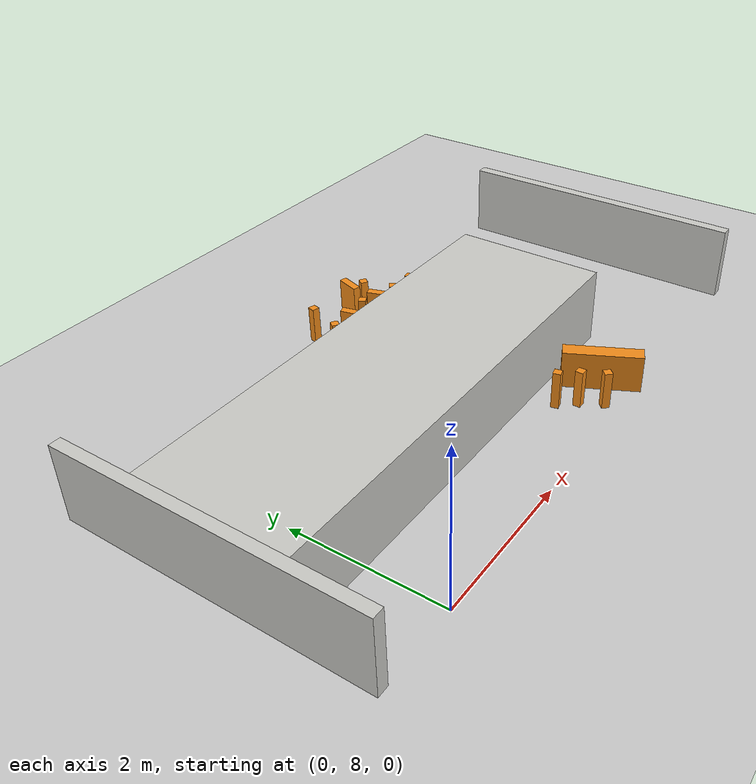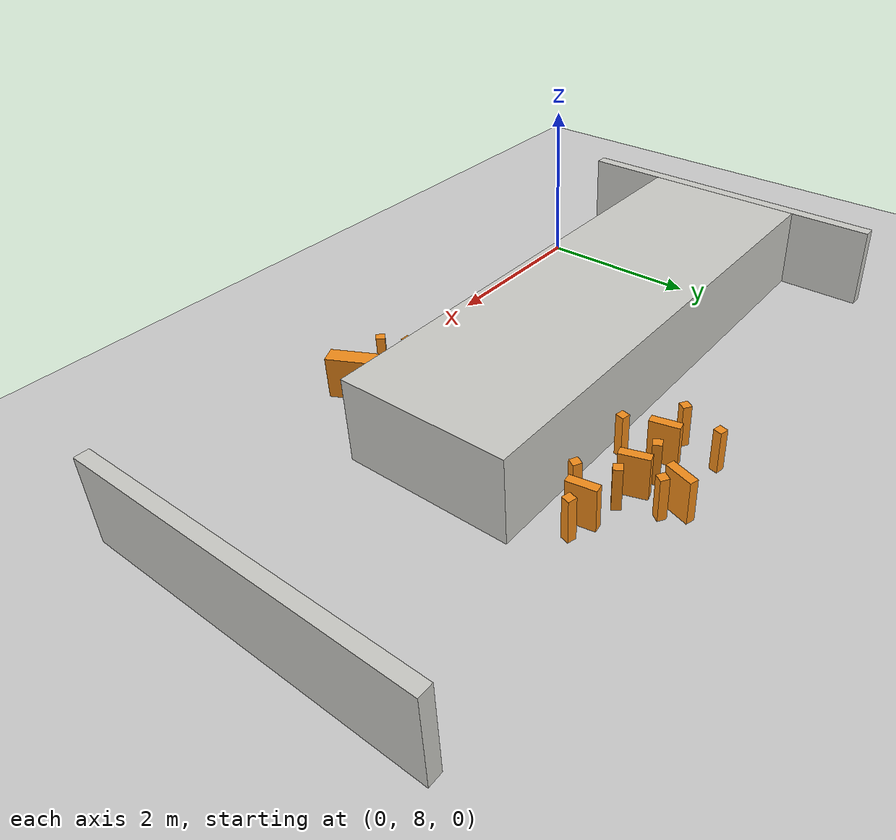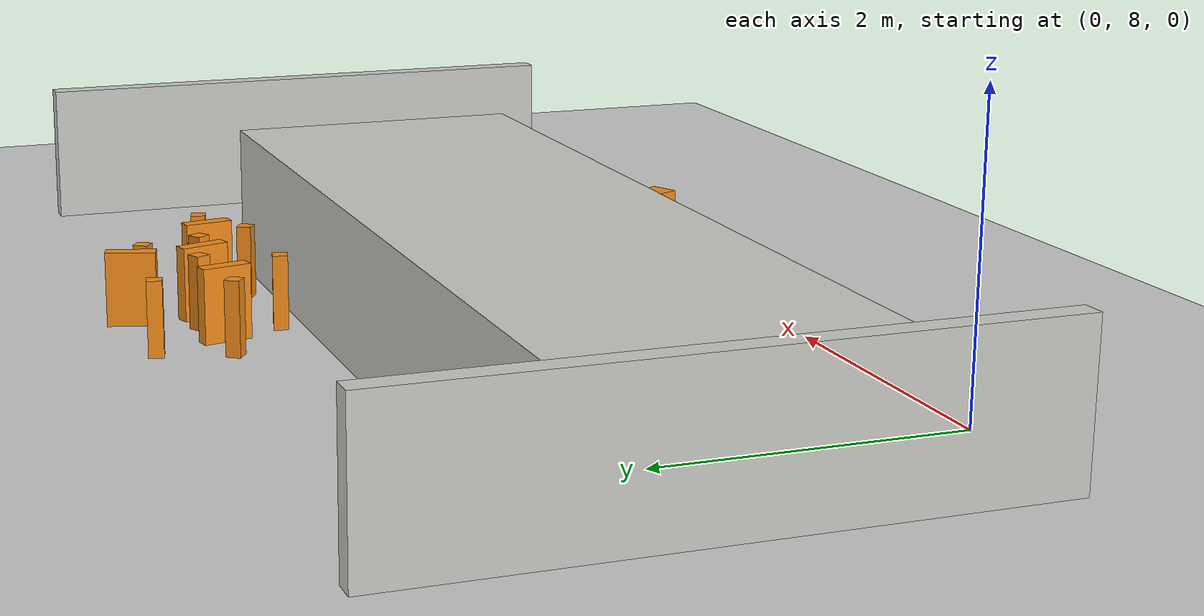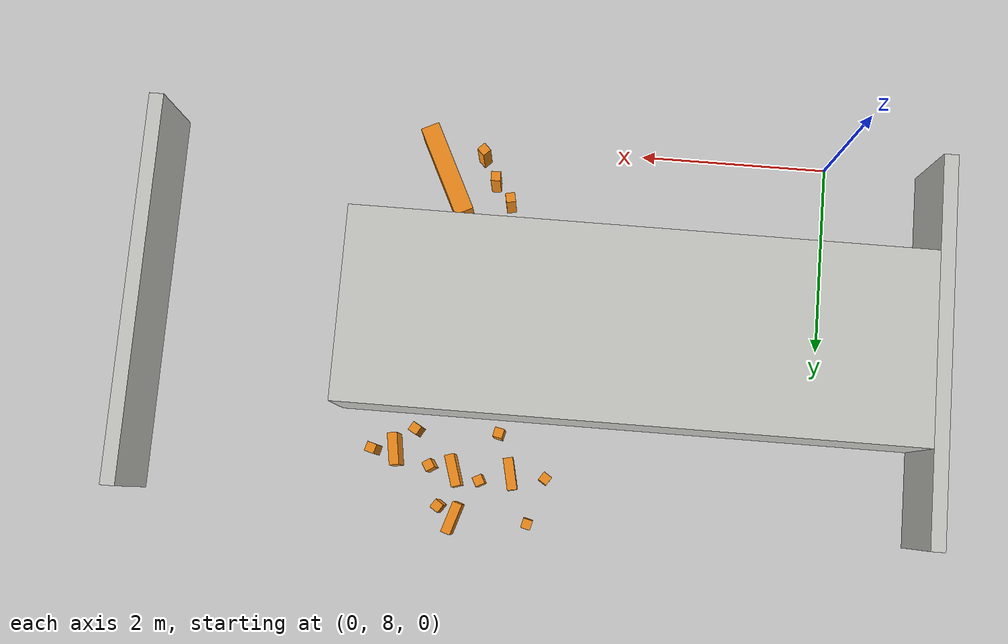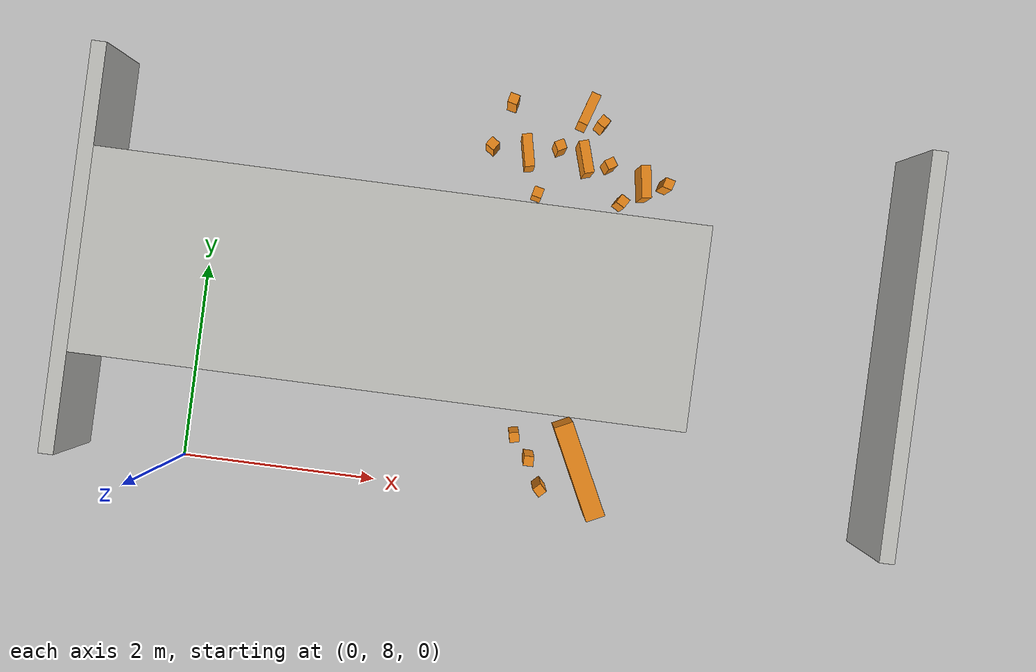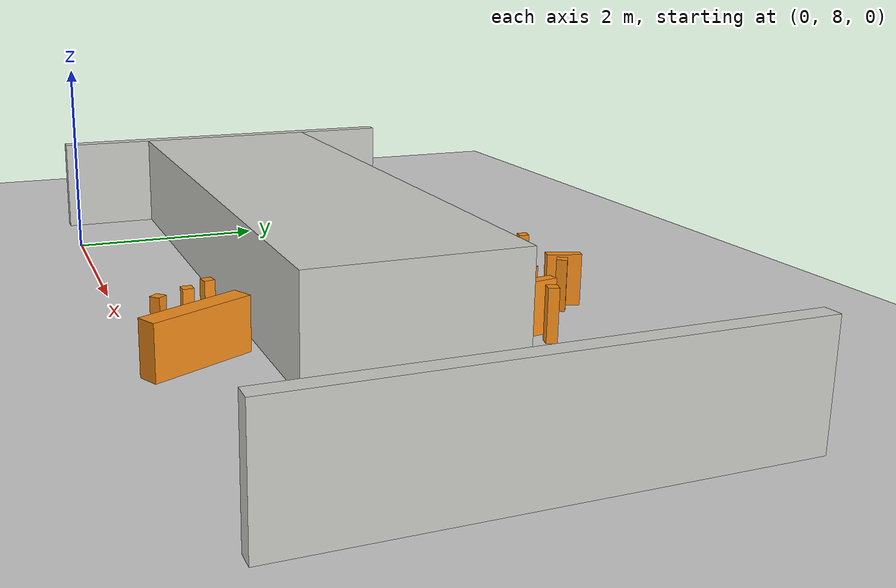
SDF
<sdf version="1.6">
 <world name="default">
  <model name="ground_plane">
   <static>1</static>
   <link name="link">
    <collision name="collision">
     <geometry><plane><normal>0 0 1</normal><size>100 100</size></plane></geometry>
     <surface><friction><ode><mu>100</mu><mu2>50</mu2></ode></friction></surface>
    </collision>
    <visual name="visual">
     <cast_shadows>0</cast_shadows>
     <geometry><plane><normal>0 0 1</normal><size>100 100</size></plane></geometry>
     <material>
      <script><uri>file://media/materials/scripts/concrete.material</uri><name>Concrete/1</name></script>
     </material>
    </visual>
   </link>
  </model>
  <model name="block_2x6m_0">
   <pose>2 10 0 0 0 -1.5708</pose>
   <link name="Block">
    <collision name="Block_Collision">
     <geometry><box><size>2 6 1</size></box></geometry>
     <pose>0 0 0.5 0 -0 0</pose>
    </collision>
    <visual name="Block_Visual">
     <pose>0 0 0.5 0 -0 0</pose>
     <geometry><box><size>2 6 1</size></box></geometry>
     <material>
      <script><uri>file://media/materials/scripts/gazebo.material</uri><name>Gazebo/CeilingTiled</name></script>
      <ambient>1 0.764706 0.305882 1</ambient>
     </material>
    </visual>
   </link>
   <static>1</static>
  </model>
  <model name="wall_4meter_clone_clone">
   <static>1</static>
   <pose>7.075 10 0 0 0 -1.5708</pose>
   <link name="Wall">
    <collision name="Wall_Collision">
     <geometry><box><size>4 0.15 1</size></box></geometry>
     <pose>0 0 0.5 0 -0 0</pose>
    </collision>
    <visual name="Wall_Visual">
     <pose>0 0 0.5 0 -0 0</pose>
     <geometry><box><size>4 0.15 1</size></box></geometry>
     <material>
      <script><uri>file://media/materials/scripts/gazebo.material</uri><name>Gazebo/CeilingTiled</name></script>
      <ambient>1 0.764706 0.305882 1</ambient>
     </material>
    </visual>
   </link>
  </model>
  <model name="wall_4meter_clone_0_clone_2">
   <static>1</static>
   <pose>-1.075 10 0 0 0 -1.5708</pose>
   <link name="Wall">
    <collision name="Wall_Collision">
     <geometry><box><size>4 0.15 1</size></box></geometry>
     <pose>0 0 0.5 0 -0 0</pose>
    </collision>
    <visual name="Wall_Visual">
     <pose>0 0 0.5 0 -0 0</pose>
     <geometry><box><size>4 0.15 1</size></box></geometry>
     <material>
      <script><uri>file://media/materials/scripts/gazebo.material</uri><name>Gazebo/CeilingTiled</name></script>
      <ambient>1 0.764706 0.305882 1</ambient>
     </material>
    </visual>
   </link>
  </model>
  <model name="caution_100cm_wall_0">
   <static>1</static>
   <pose>4.08257 8.42121 0 0 0 -1.11242</pose>
   <static>1</static>
   <link name="Wall">
    <collision name="Wall_Collision">
     <geometry><box><size>1 0.2 0.5</size></box></geometry>
     <pose>0 0 0.25 0 -0 0</pose>
    </collision>
    <visual name="Wall_Visual">
     <pose>0 0 0.25 0 -0 0</pose>
     <geometry><box><size>1 0.2 0.5</size></box></geometry>
     <material>
      <script><uri>file://media/materials/scripts/caution.material</uri><name>Caution/Orange4</name></script>
      <ambient>1 1 1 1</ambient>
     </material>
    </visual>
   </link>
  </model>
  <model name="caution_10cm_pillar_clone_0">
   <static>1</static>
   <pose>3.70816 8.1843 0 0 0 -0.800795</pose>
   <static>1</static>
   <link name="Pillar">
    <collision name="Pillar_Collision">
     <geometry><box><size>0.1 0.1 0.5</size></box></geometry>
     <pose>0 0 0.25 0 -0 0</pose>
    </collision>
    <visual name="Pillar_Visual">
     <pose>0 0 0.25 0 -0 0</pose>
     <geometry><box><size>0.1 0.1 0.5</size></box></geometry>
     <material>
      <script><uri>file://media/materials/scripts/caution.material</uri><name>Caution/Orange3</name></script>
      <ambient>1 1 1 1</ambient>
     </material>
    </visual>
   </link>
  </model>
  <model name="caution_10cm_pillar_clone_1">
   <static>1</static>
   <pose>3.38637 8.68207 0 0 -0 0.211078</pose>
   <static>1</static>
   <link name="Pillar">
    <collision name="Pillar_Collision">
     <geometry><box><size>0.1 0.1 0.5</size></box></geometry>
     <pose>0 0 0.25 0 -0 0</pose>
    </collision>
    <visual name="Pillar_Visual">
     <pose>0 0 0.25 0 -0 0</pose>
     <geometry><box><size>0.1 0.1 0.5</size></box></geometry>
     <material>
      <script><uri>file://media/materials/scripts/caution.material</uri><name>Caution/Orange3</name></script>
      <ambient>1 1 1 1</ambient>
     </material>
    </visual>
   </link>
  </model>
  <model name="caution_10cm_pillar_0">
   <static>1</static>
   <pose>2.79226 11.5849 0 0 0 -0.58643</pose>
   <static>1</static>
   <link name="Pillar">
    <collision name="Pillar_Collision">
     <geometry><box><size>0.1 0.1 0.5</size></box></geometry>
     <pose>0 0 0.25 0 -0 0</pose>
    </collision>
    <visual name="Pillar_Visual">
     <pose>0 0 0.25 0 -0 0</pose>
     <geometry><box><size>0.1 0.1 0.5</size></box></geometry>
     <material>
      <script><uri>file://media/materials/scripts/caution.material</uri><name>Caution/Orange3</name></script>
      <ambient>1 1 1 1</ambient>
     </material>
    </visual>
   </link>
  </model>
  <model name="caution_10cm_pillar_0_clone_0">
   <static>1</static>
   <pose>3.99664 11.5403 0 0 -0 0.573594</pose>
   <static>1</static>
   <link name="Pillar">
    <collision name="Pillar_Collision">
     <geometry><box><size>0.1 0.1 0.5</size></box></geometry>
     <pose>0 0 0.25 0 -0 0</pose>
    </collision>
    <visual name="Pillar_Visual">
     <pose>0 0 0.25 0 -0 0</pose>
     <geometry><box><size>0.1 0.1 0.5</size></box></geometry>
     <material>
      <script><uri>file://media/materials/scripts/caution.material</uri><name>Caution/Orange3</name></script>
      <ambient>1 1 1 1</ambient>
     </material>
    </visual>
   </link>
  </model>
  <model name="caution_10cm_pillar_0_clone_2">
   <static>1</static>
   <pose>4.60086 11.4103 0 0 0 -0.273321</pose>
   <static>1</static>
   <link name="Pillar">
    <collision name="Pillar_Collision">
     <geometry><box><size>0.1 0.1 0.5</size></box></geometry>
     <pose>0 0 0.25 0 -0 0</pose>
    </collision>
    <visual name="Pillar_Visual">
     <pose>0 0 0.25 0 -0 0</pose>
     <geometry><box><size>0.1 0.1 0.5</size></box></geometry>
     <material>
      <script><uri>file://media/materials/scripts/caution.material</uri><name>Caution/Orange3</name></script>
      <ambient>1 1 1 1</ambient>
     </material>
    </visual>
   </link>
  </model>
  <model name="caution_10cm_pillar_0_clone_4">
   <static>1</static>
   <pose>3.47136 11.6578 0 0 -0 0.482485</pose>
   <static>1</static>
   <link name="Pillar">
    <collision name="Pillar_Collision">
     <geometry><box><size>0.1 0.1 0.5</size></box></geometry>
     <pose>0 0 0.25 0 -0 0</pose>
    </collision>
    <visual name="Pillar_Visual">
     <pose>0 0 0.25 0 -0 0</pose>
     <geometry><box><size>0.1 0.1 0.5</size></box></geometry>
     <material>
      <script><uri>file://media/materials/scripts/caution.material</uri><name>Caution/Orange3</name></script>
      <ambient>1 1 1 1</ambient>
     </material>
    </visual>
   </link>
  </model>
  <model name="caution_10cm_pillar_0_clone_6">
   <static>1</static>
   <pose>2.94411 12.0583 0 0 0 -0.235764</pose>
   <static>1</static>
   <link name="Pillar">
    <collision name="Pillar_Collision">
     <geometry><box><size>0.1 0.1 0.5</size></box></geometry>
     <pose>0 0 0.25 0 -0 0</pose>
    </collision>
    <visual name="Pillar_Visual">
     <pose>0 0 0.25 0 -0 0</pose>
     <geometry><box><size>0.1 0.1 0.5</size></box></geometry>
     <material>
      <script><uri>file://media/materials/scripts/caution.material</uri><name>Caution/Orange3</name></script>
      <ambient>1 1 1 1</ambient>
     </material>
    </visual>
   </link>
  </model>
  <model name="caution_10cm_pillar_0_clone_7">
   <static>1</static>
   <pose>3.30597 11.1574 0 0 -0 1.34091</pose>
   <static>1</static>
   <link name="Pillar">
    <collision name="Pillar_Collision">
     <geometry><box><size>0.1 0.1 0.5</size></box></geometry>
     <pose>0 0 0.25 0 -0 0</pose>
    </collision>
    <visual name="Pillar_Visual">
     <pose>0 0 0.25 0 -0 0</pose>
     <geometry><box><size>0.1 0.1 0.5</size></box></geometry>
     <material>
      <script><uri>file://media/materials/scripts/caution.material</uri><name>Caution/Orange3</name></script>
      <ambient>1 1 1 1</ambient>
     </material>
    </visual>
   </link>
  </model>
  <model name="caution_10cm_pillar_0_clone_8">
   <static>1</static>
   <pose>4.1665 11.1777 0 0 0 -0.52727</pose>
   <static>1</static>
   <link name="Pillar">
    <collision name="Pillar_Collision">
     <geometry><box><size>0.1 0.1 0.5</size></box></geometry>
     <pose>0 0 0.25 0 -0 0</pose>
    </collision>
    <visual name="Pillar_Visual">
     <pose>0 0 0.25 0 -0 0</pose>
     <geometry><box><size>0.1 0.1 0.5</size></box></geometry>
     <material>
      <script><uri>file://media/materials/scripts/caution.material</uri><name>Caution/Orange3</name></script>
      <ambient>1 1 1 1</ambient>
     </material>
    </visual>
   </link>
  </model>
  <model name="caution_10cm_pillar_0_clone_10">
   <static>1</static>
   <pose>3.87231 11.9471 0 0 0 -0.58643</pose>
   <static>1</static>
   <link name="Pillar">
    <collision name="Pillar_Collision">
     <geometry><box><size>0.1 0.1 0.5</size></box></geometry>
     <pose>0 0 0.25 0 -0 0</pose>
    </collision>
    <visual name="Pillar_Visual">
     <pose>0 0 0.25 0 -0 0</pose>
     <geometry><box><size>0.1 0.1 0.5</size></box></geometry>
     <material>
      <script><uri>file://media/materials/scripts/caution.material</uri><name>Caution/Orange3</name></script>
      <ambient>1 1 1 1</ambient>
     </material>
    </visual>
   </link>
  </model>
  <model name="caution_10cm_pillar_2">
   <static>1</static>
   <pose>3.5609 8.46392 0 0 -0 0</pose>
   <static>1</static>
   <link name="Pillar">
    <collision name="Pillar_Collision">
     <geometry><box><size>0.1 0.1 0.5</size></box></geometry>
     <pose>0 0 0.25 0 -0 0</pose>
    </collision>
    <visual name="Pillar_Visual">
     <pose>0 0 0.25 0 -0 0</pose>
     <geometry><box><size>0.1 0.1 0.5</size></box></geometry>
     <material>
      <script><uri>file://media/materials/scripts/caution.material</uri><name>Caution/Orange3</name></script>
      <ambient>1 1 1 1</ambient>
     </material>
    </visual>
   </link>
  </model>
  <model name="caution_33cm_wall_clone_0">
   <static>1</static>
   <pose>3.15527 11.5656 0 0 -0 1.78744</pose>
   <static>1</static>
   <link name="Wall">
    <collision name="Wall_Collision">
     <geometry><box><size>0.33 0.1 0.5</size></box></geometry>
     <pose>0 0 0.25 0 -0 0</pose>
    </collision>
    <visual name="Wall_Visual">
     <pose>0 0 0.25 0 -0 0</pose>
     <geometry><box><size>0.33 0.1 0.5</size></box></geometry>
     <material>
      <script><uri>file://media/materials/scripts/caution.material</uri><name>Caution/Orange4</name></script>
      <ambient>1 1 1 1</ambient>
     </material>
    </visual>
   </link>
  </model>
  <model name="caution_33cm_wall_clone_1">
   <static>1</static>
   <pose>3.74391 11.5753 0 0 -0 1.87117</pose>
   <static>1</static>
   <link name="Wall">
    <collision name="Wall_Collision">
     <geometry><box><size>0.33 0.1 0.5</size></box></geometry>
     <pose>0 0 0.25 0 -0 0</pose>
    </collision>
    <visual name="Wall_Visual">
     <pose>0 0 0.25 0 -0 0</pose>
     <geometry><box><size>0.33 0.1 0.5</size></box></geometry>
     <material>
      <script><uri>file://media/materials/scripts/caution.material</uri><name>Caution/Orange4</name></script>
      <ambient>1 1 1 1</ambient>
     </material>
    </visual>
   </link>
  </model>
  <model name="caution_33cm_wall_clone_2">
   <static>1</static>
   <pose>4.37122 11.4026 0 0 -0 1.72707</pose>
   <static>1</static>
   <link name="Wall">
    <collision name="Wall_Collision">
     <geometry><box><size>0.33 0.1 0.5</size></box></geometry>
     <pose>0 0 0.25 0 -0 0</pose>
    </collision>
    <visual name="Wall_Visual">
     <pose>0 0 0.25 0 -0 0</pose>
     <geometry><box><size>0.33 0.1 0.5</size></box></geometry>
     <material>
      <script><uri>file://media/materials/scripts/caution.material</uri><name>Caution/Orange4</name></script>
      <ambient>1 1 1 1</ambient>
     </material>
    </visual>
   </link>
  </model>
  <model name="caution_33cm_wall_clone_4">
   <static>1</static>
   <pose>3.71362 12.0579 0 0 -0 1.26455</pose>
   <static>1</static>
   <link name="Wall">
    <collision name="Wall_Collision">
     <geometry><box><size>0.33 0.1 0.5</size></box></geometry>
     <pose>0 0 0.25 0 -0 0</pose>
    </collision>
    <visual name="Wall_Visual">
     <pose>0 0 0.25 0 -0 0</pose>
     <geometry><box><size>0.33 0.1 0.5</size></box></geometry>
     <material>
      <script><uri>file://media/materials/scripts/caution.material</uri><name>Caution/Orange4</name></script>
      <ambient>1 1 1 1</ambient>
     </material>
    </visual>
   </link>
  </model>
 </world>
</sdf>
